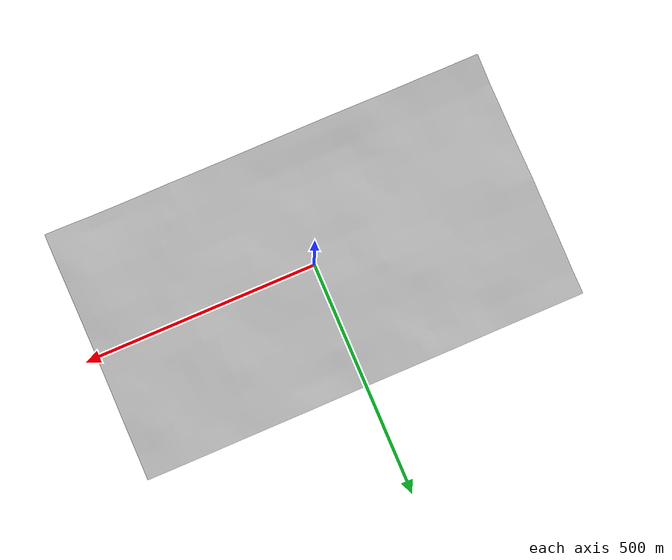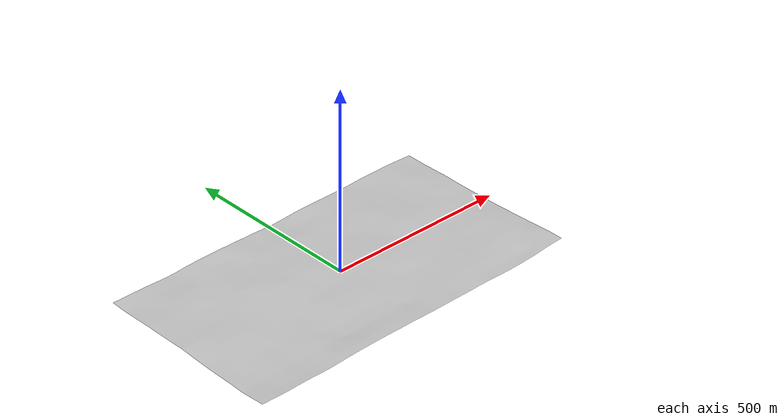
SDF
<?xml version="1.0" ?>
<sdf version="1.6">
  <model name="cerdanya_droneport">
    <static>true</static>
    <link name="link">
      <pose>0 0 -1.83 0 0 0</pose>
      <collision name="collision">
        <geometry>
          <mesh>
            <uri>model://cerdanya_droneport/meshes/small_cerdanya_centered.dae</uri>
            <scale>1.0 1.0 1.0</scale>
          </mesh>
        </geometry>
      </collision>
      <visual name="branch">
        <geometry>
          <mesh>
            <uri>model://cerdanya_droneport/meshes/small_cerdanya_centered.dae</uri>
            <scale>1.0 1.0 1.0</scale>
          </mesh>
        </geometry>
        <material>
          <script>
            <uri>model://cerdanya_droneport/materials/scripts/</uri>
            <uri>model://cerdanya_droneport/materials/textures/</uri>
            <name>CerdanyaDroneport/Plane</name>
          </script>
        </material>
      </visual>
    </link>
  </model>
</sdf>
